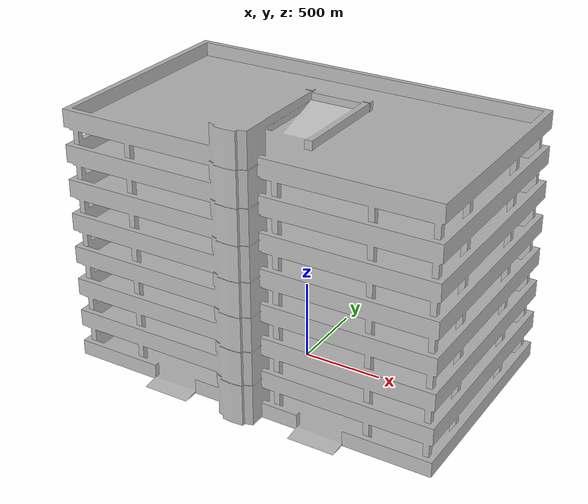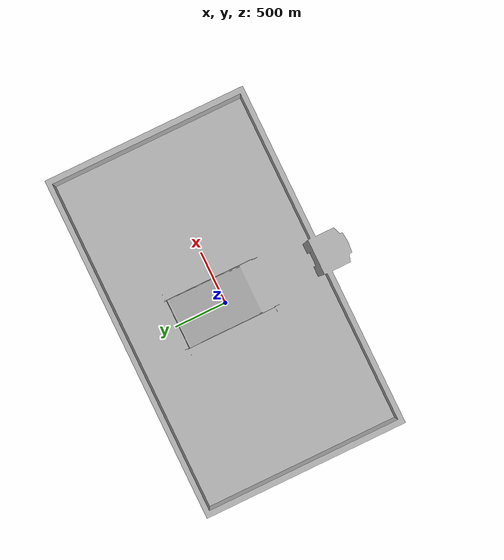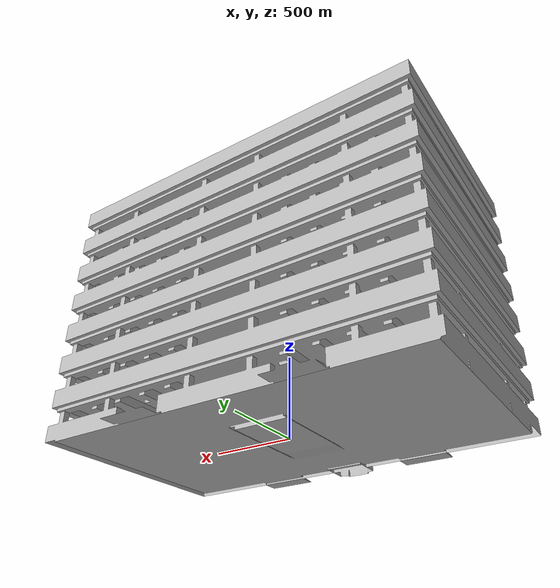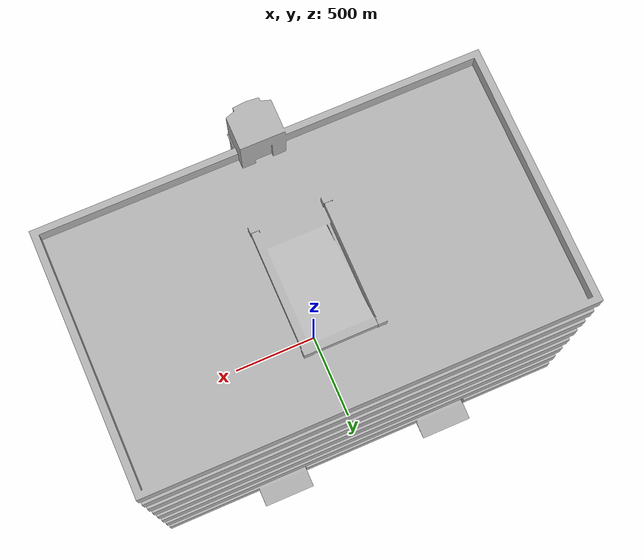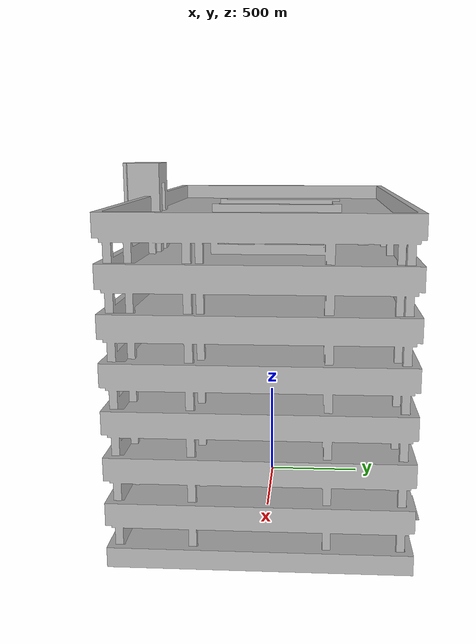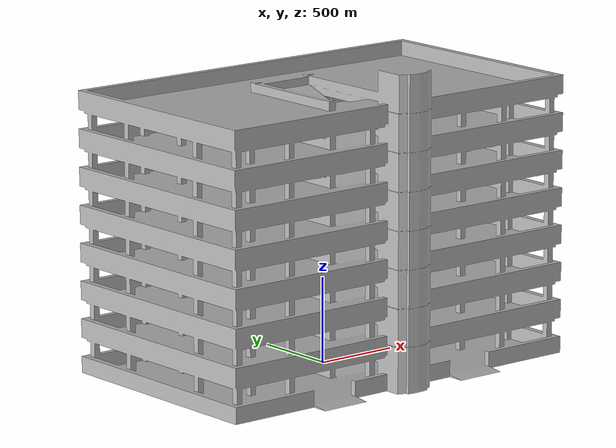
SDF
<?xml version="1.0" ?>
<!-- |    This document was autogenerated by xacro from parking_garage/model.sdf       | -->
<!-- |    EDITING THIS FILE BY HAND IS NOT RECOMMENDED                                 | -->
<sdf version="1.6">
  <model name="parking_garage">
    <static>true</static>
    <link name="link">
      <collision name="collision">
        <geometry>
          <mesh>
            <uri>model://parking_garage/meshes/parking_garage.dae</uri>
          </mesh>
        </geometry>
      </collision>
      <visual name="visual">
        <geometry>
          <mesh>
            <uri>model://parking_garage/meshes/parking_garage.dae</uri>
          </mesh>
        </geometry>
      </visual>
    </link>
  </model>
</sdf>
